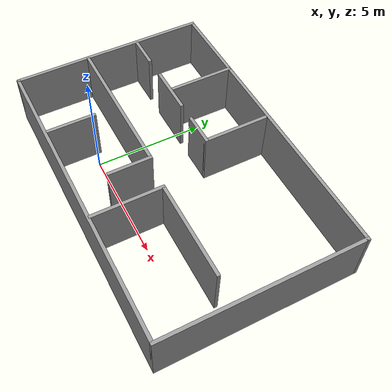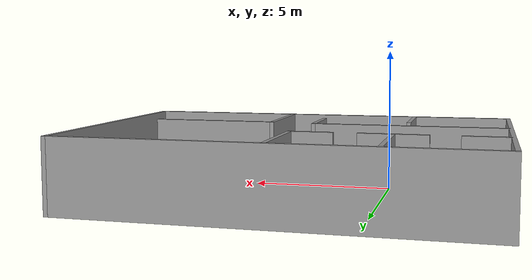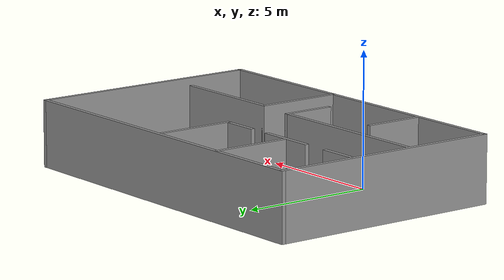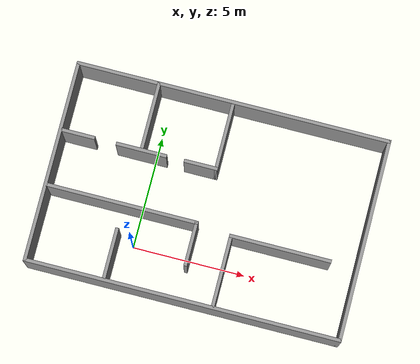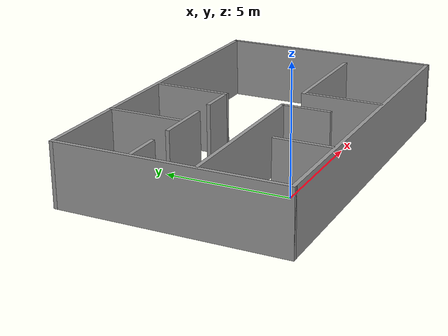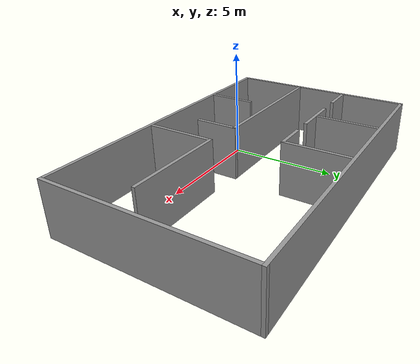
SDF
<?xml version='1.0'?>
<sdf version='1.7'>
  <model name='lager'>
    <pose>2.725 2.495 0 0 -0 0</pose>
    <link name='Wall_0'>
      <collision name='Wall_0_Collision'>
        <geometry>
          <box>
            <size>14 0.15 2.5</size>
          </box>
        </geometry>
        <pose>0 0 1.25 0 -0 0</pose>
      </collision>
      <visual name='Wall_0_Visual'>
        <pose>0 0 1.25 0 -0 0</pose>
        <geometry>
          <box>
            <size>14 0.15 2.5</size>
          </box>
        </geometry>
        <material>
          <script>
            <uri>file://media/materials/scripts/gazebo.material</uri>
            <name>Gazebo/Grey</name>
          </script>
          <ambient>1 1 1 1</ambient>
        </material>
        <meta>
          <layer>0</layer>
        </meta>
      </visual>
      <pose>0 -4.425 0 0 -0 0</pose>
    </link>
    <link name='Wall_1'>
      <collision name='Wall_1_Collision'>
        <geometry>
          <box>
            <size>9 0.15 2.5</size>
          </box>
        </geometry>
        <pose>0 0 1.25 0 -0 0</pose>
      </collision>
      <visual name='Wall_1_Visual'>
        <pose>0 0 1.25 0 -0 0</pose>
        <geometry>
          <box>
            <size>9 0.15 2.5</size>
          </box>
        </geometry>
        <material>
          <script>
            <uri>file://media/materials/scripts/gazebo.material</uri>
            <name>Gazebo/Grey</name>
          </script>
          <ambient>1 1 1 1</ambient>
        </material>
        <meta>
          <layer>0</layer>
        </meta>
      </visual>
      <pose>6.925 0 0 0 -0 1.5708</pose>
    </link>
    <link name='Wall_12'>
      <collision name='Wall_12_Collision'>
        <geometry>
          <box>
            <size>3 0.15 2.5</size>
          </box>
        </geometry>
        <pose>0 0 1.25 0 -0 0</pose>
      </collision>
      <visual name='Wall_12_Visual'>
        <pose>0 0 1.25 0 -0 0</pose>
        <geometry>
          <box>
            <size>3 0.15 2.5</size>
          </box>
        </geometry>
        <material>
          <script>
            <uri>file://media/materials/scripts/gazebo.material</uri>
            <name>Gazebo/Grey</name>
          </script>
          <ambient>1 1 1 1</ambient>
        </material>
        <meta>
          <layer>0</layer>
        </meta>
      </visual>
      <pose>-3.31696 2.9739 0 0 -0 -1.5708</pose>
    </link>
    <link name='Wall_14'>
      <collision name='Wall_14_Collision'>
        <geometry>
          <box>
            <size>1.5 0.15 2.5</size>
          </box>
        </geometry>
        <pose>0 0 1.25 0 -0 0</pose>
      </collision>
      <visual name='Wall_14_Visual'>
        <pose>0 0 1.25 0 -0 0</pose>
        <geometry>
          <box>
            <size>1.5 0.15 2.5</size>
          </box>
        </geometry>
        <material>
          <script>
            <uri>file://media/materials/scripts/gazebo.material</uri>
            <name>Gazebo/Grey</name>
          </script>
          <ambient>1 1 1 1</ambient>
        </material>
        <meta>
          <layer>0</layer>
        </meta>
      </visual>
      <pose>-0.672064 1.41979 0 0 -0 0</pose>
    </link>
    <link name='Wall_17'>
      <collision name='Wall_17_Collision'>
        <geometry>
          <box>
            <size>3 0.15 2.5</size>
          </box>
        </geometry>
        <pose>0 0 1.25 0 -0 0</pose>
      </collision>
      <visual name='Wall_17_Visual'>
        <pose>0 0 1.25 0 -0 0</pose>
        <geometry>
          <box>
            <size>3 0.15 2.5</size>
          </box>
        </geometry>
        <material>
          <script>
            <uri>file://media/materials/scripts/gazebo.material</uri>
            <name>Gazebo/Grey</name>
          </script>
          <ambient>1 1 1 1</ambient>
        </material>
        <meta>
          <layer>0</layer>
        </meta>
      </visual>
      <pose>0.002936 2.84479 0 0 -0 1.5708</pose>
    </link>
    <link name='Wall_2'>
      <collision name='Wall_2_Collision'>
        <geometry>
          <box>
            <size>14 0.15 2.5</size>
          </box>
        </geometry>
        <pose>0 0 1.25 0 -0 0</pose>
      </collision>
      <visual name='Wall_2_Visual'>
        <pose>0 0 1.25 0 -0 0</pose>
        <geometry>
          <box>
            <size>14 0.15 2.5</size>
          </box>
        </geometry>
        <material>
          <script>
            <uri>file://media/materials/scripts/gazebo.material</uri>
            <name>Gazebo/Grey</name>
          </script>
          <ambient>1 1 1 1</ambient>
        </material>
        <meta>
          <layer>0</layer>
        </meta>
      </visual>
      <pose>0 4.425 0 0 -0 3.14159</pose>
    </link>
    <link name='Wall_20'>
      <collision name='Wall_20_Collision'>
        <geometry>
          <box>
            <size>6.75 0.15 2.5</size>
          </box>
        </geometry>
        <pose>0 0 1.25 0 -0 0</pose>
      </collision>
      <visual name='Wall_20_Visual'>
        <pose>0 0 1.25 0 -0 0</pose>
        <geometry>
          <box>
            <size>6.75 0.15 2.5</size>
          </box>
        </geometry>
        <material>
          <script>
            <uri>file://media/materials/scripts/gazebo.material</uri>
            <name>Gazebo/Grey</name>
          </script>
          <ambient>1 1 1 1</ambient>
        </material>
        <meta>
          <layer>0</layer>
        </meta>
      </visual>
      <pose>-3.52683 -1.05818 0 0 -0 0</pose>
    </link>
    <link name='Wall_21'>
      <collision name='Wall_21_Collision'>
        <geometry>
          <box>
            <size>2 0.15 2.5</size>
          </box>
        </geometry>
        <pose>0 0 1.25 0 -0 0</pose>
      </collision>
      <visual name='Wall_21_Visual'>
        <pose>0 0 1.25 0 -0 0</pose>
        <geometry>
          <box>
            <size>2 0.15 2.5</size>
          </box>
        </geometry>
        <material>
          <script>
            <uri>file://media/materials/scripts/gazebo.material</uri>
            <name>Gazebo/Grey</name>
          </script>
          <ambient>1 1 1 1</ambient>
        </material>
        <meta>
          <layer>0</layer>
        </meta>
      </visual>
      <pose>-0.226825 -1.98318 0 0 -0 -1.5708</pose>
    </link>
    <link name='Wall_23'>
      <collision name='Wall_23_Collision'>
        <geometry>
          <box>
            <size>3.25 0.15 2.5</size>
          </box>
        </geometry>
        <pose>0 0 1.25 0 -0 0</pose>
      </collision>
      <visual name='Wall_23_Visual'>
        <pose>0 0 1.25 0 -0 0</pose>
        <geometry>
          <box>
            <size>3.25 0.15 2.5</size>
          </box>
        </geometry>
        <material>
          <script>
            <uri>file://media/materials/scripts/gazebo.material</uri>
            <name>Gazebo/Grey</name>
          </script>
          <ambient>1 1 1 1</ambient>
        </material>
        <meta>
          <layer>0</layer>
        </meta>
      </visual>
      <pose>1.34365 -2.79389 0 0 -0 1.5708</pose>
    </link>
    <link name='Wall_24'>
      <collision name='Wall_24_Collision'>
        <geometry>
          <box>
            <size>4.5 0.15 2.5</size>
          </box>
        </geometry>
        <pose>0 0 1.25 0 -0 0</pose>
      </collision>
      <visual name='Wall_24_Visual'>
        <pose>0 0 1.25 0 -0 0</pose>
        <geometry>
          <box>
            <size>4.5 0.15 2.5</size>
          </box>
        </geometry>
        <material>
          <script>
            <uri>file://media/materials/scripts/gazebo.material</uri>
            <name>Gazebo/Grey</name>
          </script>
          <ambient>1 1 1 1</ambient>
        </material>
        <meta>
          <layer>0</layer>
        </meta>
      </visual>
      <pose>3.51865 -1.24389 0 0 -0 0</pose>
    </link>
    <link name='Wall_26'>
      <collision name='Wall_26_Collision'>
        <geometry>
          <box>
            <size>2.25 0.15 2.5</size>
          </box>
        </geometry>
        <pose>0 0 1.25 0 -0 0</pose>
      </collision>
      <visual name='Wall_26_Visual'>
        <pose>0 0 1.25 0 -0 0</pose>
        <geometry>
          <box>
            <size>2.25 0.15 2.5</size>
          </box>
        </geometry>
        <material>
          <script>
            <uri>file://media/materials/scripts/gazebo.material</uri>
            <name>Gazebo/Grey</name>
          </script>
          <ambient>1 1 1 1</ambient>
        </material>
        <meta>
          <layer>0</layer>
        </meta>
      </visual>
      <pose>-3.45349 -3.25008 0 0 -0 1.5708</pose>
    </link>
    <link name='Wall_3'>
      <collision name='Wall_3_Collision'>
        <geometry>
          <box>
            <size>9 0.15 2.5</size>
          </box>
        </geometry>
        <pose>0 0 1.25 0 -0 0</pose>
      </collision>
      <visual name='Wall_3_Visual'>
        <pose>0 0 1.25 0 -0 0</pose>
        <geometry>
          <box>
            <size>9 0.15 2.5</size>
          </box>
        </geometry>
        <material>
          <script>
            <uri>file://media/materials/scripts/gazebo.material</uri>
            <name>Gazebo/Grey</name>
          </script>
          <ambient>1 1 1 1</ambient>
        </material>
        <meta>
          <layer>0</layer>
        </meta>
      </visual>
      <pose>-6.925 0 0 0 -0 -1.5708</pose>
    </link>
    <link name='Wall_6'>
      <collision name='Wall_6_Collision'>
        <geometry>
          <box>
            <size>1.5 0.15 2.5</size>
          </box>
        </geometry>
        <pose>0 0 1.25 0 -0 0</pose>
      </collision>
      <visual name='Wall_6_Visual'>
        <pose>0 0 1.25 0 -0 0</pose>
        <geometry>
          <box>
            <size>1.5 0.15 2.5</size>
          </box>
        </geometry>
        <material>
          <script>
            <uri>file://media/materials/scripts/gazebo.material</uri>
            <name>Gazebo/Grey</name>
          </script>
          <ambient>1 1 1 1</ambient>
        </material>
        <meta>
          <layer>0</layer>
        </meta>
      </visual>
      <pose>-6.13997 1.41183 0 0 -0 0</pose>
    </link>
    <link name='Wall_8'>
      <collision name='Wall_8_Collision'>
        <geometry>
          <box>
            <size>2.25 0.15 2.5</size>
          </box>
        </geometry>
        <pose>0 0 1.25 0 -0 0</pose>
      </collision>
      <visual name='Wall_8_Visual'>
        <pose>0 0 1.25 0 -0 0</pose>
        <geometry>
          <box>
            <size>2.25 0.15 2.5</size>
          </box>
        </geometry>
        <material>
          <script>
            <uri>file://media/materials/scripts/gazebo.material</uri>
            <name>Gazebo/Grey</name>
          </script>
          <ambient>1 1 1 1</ambient>
        </material>
        <meta>
          <layer>0</layer>
        </meta>
      </visual>
      <pose>-3.31636 1.41255 0 0 -0 0</pose>
    </link>
    <static>1</static>
  </model>
</sdf>
